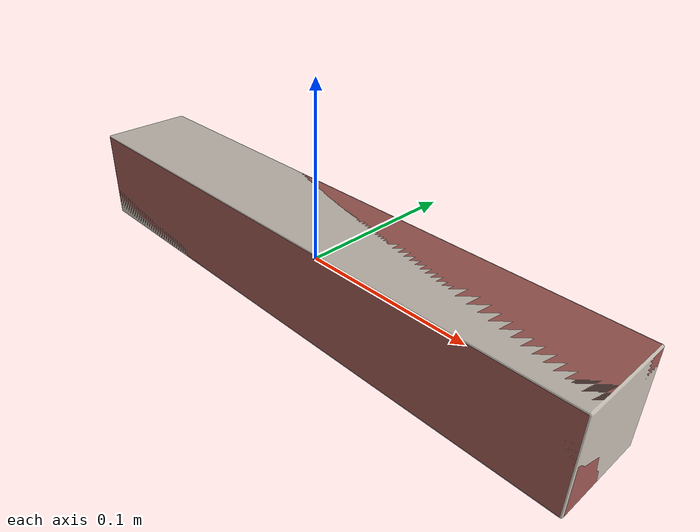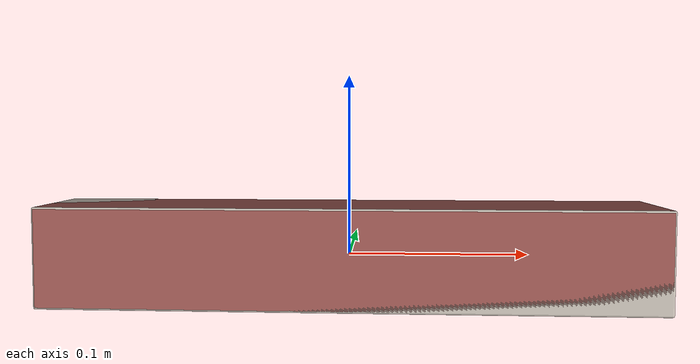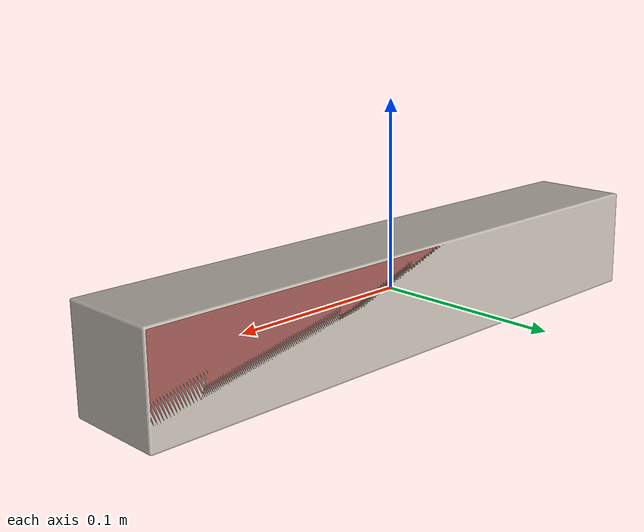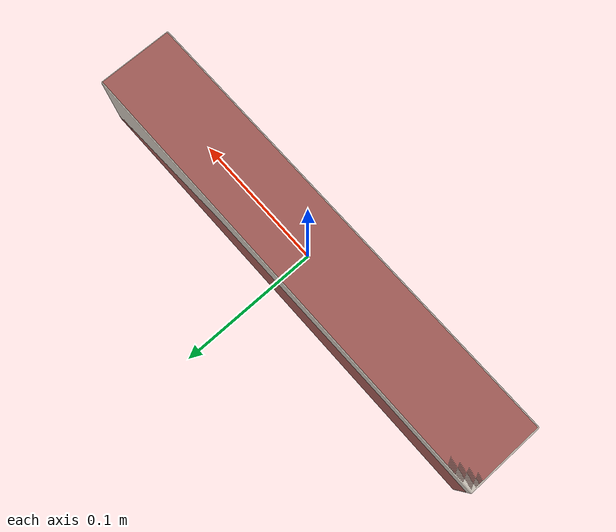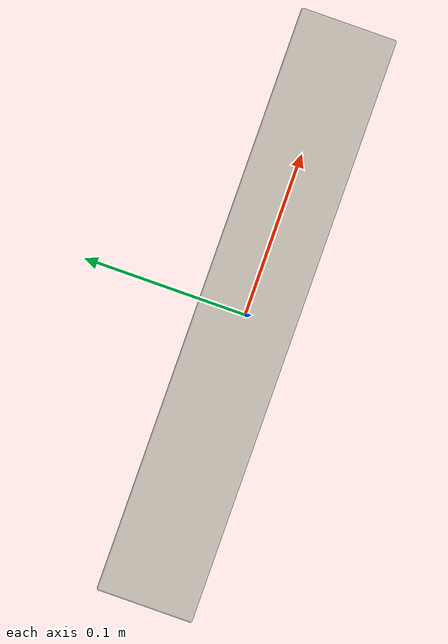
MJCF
<?xml version='1.0' encoding='utf-8'?>
<mujoco model="model">
  <option timestep="0.002" gravity="0.0 0.0 -9.81" />
  <compiler angle="radian" />
  <asset>
    <mesh file="visual/AluminumFoil001.obj" name="AluminumFoil001_vis" />
    <texture file="visual/T_BC001.png" name="AluminumFoil001_material" type="2d" />
    <material name="AluminumFoil001_material" rgba="1 1 1 1.0" texture="AluminumFoil001_material" shininess="0.5" specular="0.3103448502657381" />
    <mesh file="collision/collision_mesh_collision_0.obj" name="AluminumFoil001_collision_mesh_0" />
  </asset>
  <default>
    <default class="visual">
      <geom conaffinity="0" contype="0" group="1" type="mesh" />
    </default>
    <default class="collision">
      <geom group="0" rgba="0.5 0 0 0.5" density="1.0" solref="0.004 1" solimp="0.998 0.998 0.001" />
    </default>
    <default class="spawn">
      <geom group="0" rgba="1 1 1 0.5" contype="0" conaffinity="0" />
      <site group="0" rgba="1 1 1 0.5" />
    </default>
    <default class="region">
      <geom group="1" conaffinity="0" contype="0" rgba="0 1 0 0" mass="0" />
    </default>
  </default>
  <worldbody>
    <body>
      <body name="object">
        <geom mesh="AluminumFoil001_vis" type="mesh" solimp="0.998 0.998 0.001" solref="0.001 1" friction="0.95 0.3 0.1" class="visual" material="AluminumFoil001_material" />
        <geom class="region" name="reg_bbox" type="box" pos="0.0 0.0 0.0" size="0.171151 0.027969 0.027969" />
        <geom mesh="AluminumFoil001_collision_mesh_0" type="mesh" class="collision" />
      </body>
    <site rgba="0 0 0 0" size="0.005" pos="0 0 -0.027969" name="bottom_site" /><site rgba="0 0 0 0" size="0.005" pos="0 0 0.027969" name="top_site" /><site rgba="0 0 0 0" size="0.005" pos="0.171151 0.171151 0" name="horizontal_radius_site" /></body>
  </worldbody>
  <actuator />
</mujoco>
